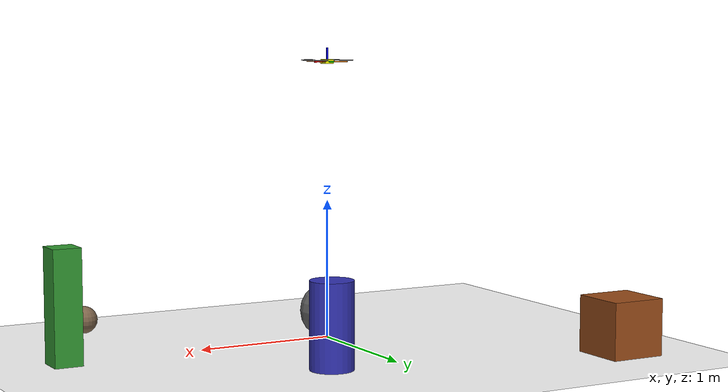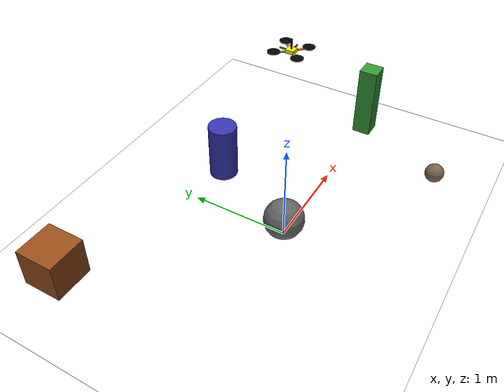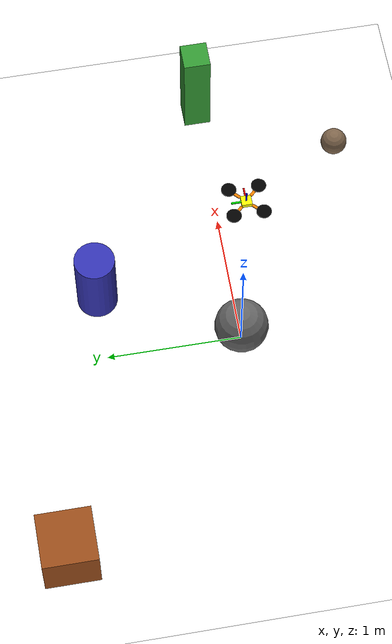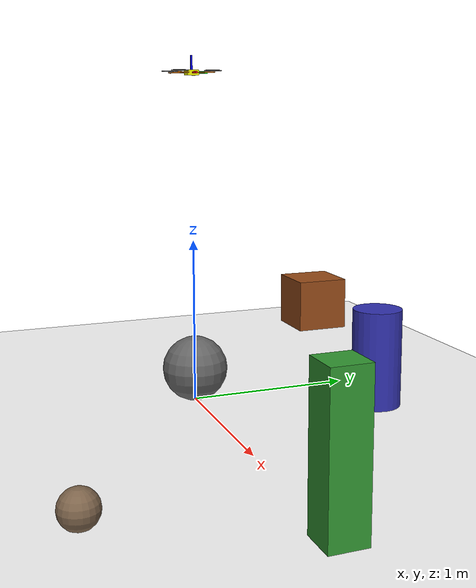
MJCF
<mujoco model="MuJoCo Model">
  <!--Compiler Options-->
  <compiler angle="radian"/>
  <option timestep="0.001" gravity="0 0 -9.81" density="1.225" viscosity="1.8e-05" integrator="RK4" jacobian="sparse">
    <flag energy="enable" contact="enable"/>
  </option>

  <asset>
  <texture name="texchecker" type="2d" builtin="checker" width="512" height="512"
           rgb1="0.8 0.8 0.8" rgb2="0.2 0.2 0.2" />
  <material name="matchecker" texture="texchecker" texrepeat="4 4"
            reflectance="0.2" shininess="0.5" specular="0.3" />
  </asset>

  <worldbody>
    <light pos="0 0 1.5" dir="0 0 -1" directional="true"/>
    <geom name="floor" type="plane" size="20 20 0.1" material="matchecker"
      rgba="1 1 1 1" friction="1.0 0.005 0.0001" condim="3"/>

    <!-- System Models -->
    <!-- Quadrotor body -->
    <body name="drone" pos="0 0 2" euler="0 0 0">
      <joint name="drone" type="free" damping="0.005" armature="0" pos="0 0 0"/>

      <!-- Core: bright yellow for visibility -->
      <geom name="core" type="box" pos="0 0 0" quat="1. 0. 0. 0." size="0.035 0.035 0.015"
            rgba="1.0 1.0 0.0 1.0" mass=".84" friction="1.0 0.005 0.0001"/>

      <!-- Arms: bright orange -->
      <geom name="a00" type="box" pos=".071 0.071 0.0" size="0.05 0.01 0.0025"
            quat=".924 0.0 0.0 0.383" rgba="1.0 0.5 0.0 1.0" mass=".025"/>
      <geom name="a10" type="box" pos=".071 -0.071 0.0" size="0.05 0.01 0.0025"
            quat=".383 0.0 0.0 0.924" rgba="1.0 0.5 0.0 1.0" mass=".025"/>
      <geom name="a20" type="box" pos="-0.071 -0.071 0.0" size="0.05 0.01 0.0025"
            quat="-.383 0.0 0.0 0.924" rgba="1.0 0.5 0.0 1.0" mass=".025"/>
      <geom name="a30" type="box" pos="-.071 0.071 0.0" size="0.05 0.01 0.0025"
            quat=".924 0.0 0.0 -0.383" rgba="1.0 0.5 0.0 1.0" mass=".025"/>

      <!-- Thrusters: black for contrast -->
      <geom name="thruster0" type="cylinder" pos="0.1 0.1 0.01" size="0.05 0.0025"
            quat="1.0 0.0 0.0 0." rgba="0.0 0.0 0.0 1.0" mass=".015"/>
      <geom name="thruster1" type="cylinder" pos="0.1 -0.1 0.01" size="0.05 0.0025"
            quat="1.0 0.0 0.0 0." rgba="0.0 0.0 0.0 1.0" mass=".015"/>
      <geom name="thruster2" type="cylinder" pos="-0.1 -0.1 0.01" size="0.05 0.0025"
            quat="1.0 0.0 0.0 0." rgba="0.0 0.0 0.0 1.0" mass=".015"/>
      <geom name="thruster3" type="cylinder" pos="-0.1 0.1 0.01" size="0.05 0.0025"
            quat="1.0 0.0 0.0 0." rgba="0.0 0.0 0.0 1.0" mass=".015"/>

      <!-- Axes remain unchanged -->
      <site name="qcX" type="box" pos="0.05 0.0 0.0" size="0.05 0.005 0.005"
            quat="1.0 0.0 0.0 0." rgba="1 0 0 1"/>
      <site name="qcY" type="box" pos="0.0 0.05 0.0" size="0.05 0.005 0.005"
            quat="0.707 0.0 0.0 0.707" rgba="0 1 0 1"/>
      <site name="qcZ" type="box" pos="0.0 0.0 0.05" size="0.05 0.005 0.005"
            quat="-0.707 0.0 0.707 0." rgba="0 0 1 1"/>

      <!-- Actuator sites: bright cyan (unchanged) -->
      <site name="thrust" type="box" pos="0 0 0" size="0.035 0.035 0.015" quat="1.0 0.0 0.0 0.0" rgba="0 1 1 1"/>
      <site name="rateX" type="box" pos="0 0 0" quat="1. 0. 0. 0." size="0.035 0.035 0.015" rgba="0 1 1 1"/>
      <site name="rateY" type="box" pos="0 0 0" quat="1. 0. 0. 0." size="0.035 0.035 0.015" rgba="0 1 1 1"/>
      <site name="rateZ" type="box" pos="0 0 0" quat="1. 0. 0. 0." size="0.035 0.035 0.015" rgba="0 1 1 1"/>
      <site name="imu" pos="0 0 0"/>
      <site name="payload_point_drone" pos="0.0 0.0 -0.00"/>
      <!-- Add bottom-facing camera here -->
      <camera name="bottom_camera" pos="0.035 0 -0.015" euler="0 0 -1.57"/>
    </body>
      <geom name="rock" type="sphere" pos="1.5 -1.0 0.1" size="0.1" rgba="0.5 0.4 0.3 1"/>
      <geom name="crate" type="box" pos="-1.5 1.5 0.2" size="0.2 0.2 0.2" rgba="0.6 0.3 0.1 1"/>
      <geom name="barrel" type="cylinder" pos="0.5 1.0 0.3" size="0.15 0.3" rgba="0.2 0.2 0.7 1"/>
      <geom name="tall_box" type="box" pos="2.0 0.0 0.4" size="0.1 0.1 0.4" rgba="0.2 0.6 0.2 1"/>
      <geom name="metal_sphere" type="sphere" pos="0.0 0.0 0.2" size="0.2" rgba="0.4 0.4 0.4 1"/>

  </worldbody>

      <!--  Actuators of the system   -->
<actuator>
    <motor ctrllimited="true" ctrlrange="0 42.0" gear="0 0. 1. 0. 0. 0." site="thrust" name="body_thrust"/>
    <motor ctrllimited="true" ctrlrange="-0.5 0.5" gear="0. 0. 0. 1. 0. 0." site="rateX" name="x_moment"/>
    <motor ctrllimited="true" ctrlrange="-0.5 0.5" gear="0. 0. 0. 0. 1. 0." site="rateY" name="y_moment"/>
    <motor ctrllimited="true" ctrlrange="-0.5 0.5" gear="0. 0. 0. 0. 0. 1." site="rateZ" name="z_moment"/>
</actuator>

<sensor>
    <framequat name="drone_quat" objtype="site" objname="imu" noise="0.00"/>
    <gyro name="drone_angular_velocity" site="imu" noise="0.00"/>
    <accelerometer name="drone_linacc" site="imu" noise="0.00"/>
    <framepos name="drone_position" objtype="site" objname="imu" noise="0.00"/>
    <velocimeter name="drone_linear_velocity" site="imu" noise="0.00"/>
</sensor>
</mujoco>
